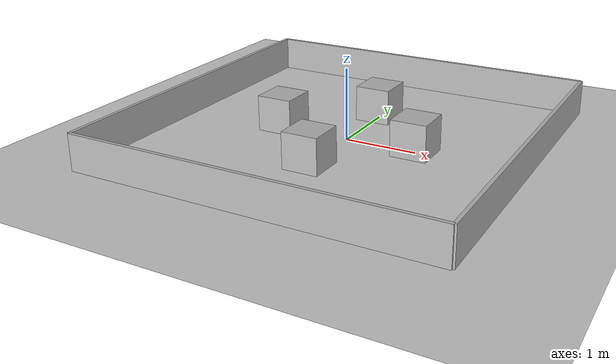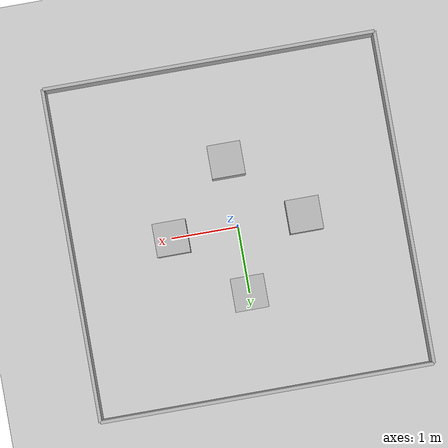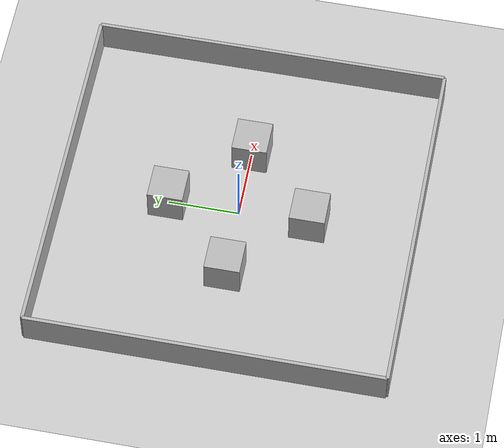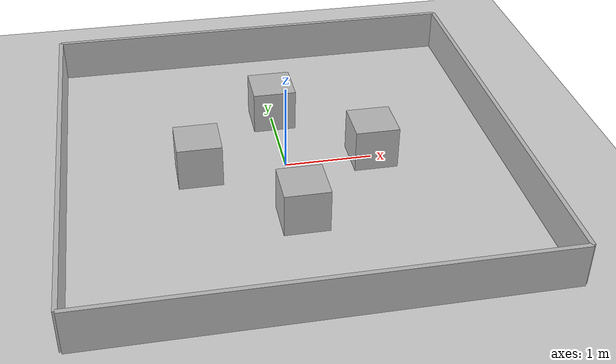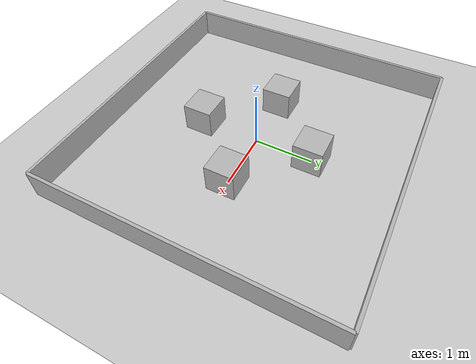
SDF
<?xml version="1.0" ?>
<sdf version="1.7">
  <world name="diff_drive_world">

    <!-- SCENE -->
    <scene>
      <grid>true</grid>
    </scene>

    <!-- PHYSICS (CORREGIDO) -->
    <physics name="1ms" type="ode">
      <max_step_size>0.001</max_step_size>
      <real_time_factor>1.0</real_time_factor>
    </physics>

    <!-- PLUGINS -->
    <plugin filename="gz-sim-physics-system" name="gz::sim::systems::Physics"/>
    <plugin filename="gz-sim-user-commands-system" name="gz::sim::systems::UserCommands"/>
    <plugin filename="gz-sim-scene-broadcaster-system" name="gz::sim::systems::SceneBroadcaster"/>
    <plugin filename="gz-sim-sensors-system" name="gz::sim::systems::Sensors">
      <render_engine>ogre2</render_engine>
    </plugin>
    <!-- LUZ -->
    <light type="directional" name="sun">
      <cast_shadows>true</cast_shadows>
      <pose>0 0 10 0 0 0</pose>
      <diffuse>0.8 0.8 0.8 1</diffuse>
      <specular>0.2 0.2 0.2 1</specular>
      <direction>-0.5 0.1 -0.9</direction>
    </light>

    <!-- SUELO -->
    <model name="ground_plane">
      <static>true</static>
      <link name="link">
        <collision name="collision">
          <geometry>
            <plane>
              <normal>0 0 1</normal>
            </plane>
          </geometry>
        </collision>
        <visual name="visual">
          <geometry>
            <plane>
              <normal>0 0 1</normal>
              <size>10 10</size>
            </plane>
          </geometry>
        </visual>
      </link>
    </model>

    <!-- PAREDES -->
    <model name="walls">
      <static>true</static>

      <link name="w1">
        <pose>0 2.5 0.25 0 0 0</pose>
        <collision name="c1">
          <geometry><box><size>5 0.05 0.5</size></box></geometry>
        </collision>
        <visual name="v1">
          <geometry><box><size>5 0.05 0.5</size></box></geometry>
        </visual>
      </link>

      <link name="w2">
        <pose>0 -2.5 0.25 0 0 0</pose>
        <collision name="c2">
          <geometry><box><size>5 0.05 0.5</size></box></geometry>
        </collision>
        <visual name="v2">
          <geometry><box><size>5 0.05 0.5</size></box></geometry>
        </visual>
      </link>

      <link name="w3">
        <pose>2.5 0 0.25 0 0 0</pose>
        <collision name="c3">
          <geometry><box><size>0.05 5 0.5</size></box></geometry>
        </collision>
        <visual name="v3">
          <geometry><box><size>0.05 5 0.5</size></box></geometry>
        </visual>
      </link>

      <link name="w4">
        <pose>-2.5 0 0.25 0 0 0</pose>
        <collision name="c4">
          <geometry><box><size>0.05 5 0.5</size></box></geometry>
        </collision>
        <visual name="v4">
          <geometry><box><size>0.05 5 0.5</size></box></geometry>
        </visual>
      </link>

    </model>

    <!-- OBSTÁCULOS -->
    <model name="box1">
      <pose>0 -1 0.25 0 0 0</pose>
      <link name="link">
        <collision name="collision">
          <geometry><box><size>0.5 0.5 0.5</size></box></geometry>
        </collision>
        <visual name="visual">
          <geometry><box><size>0.5 0.5 0.5</size></box></geometry>
        </visual>
      </link>
    </model>

    <model name="box2">
      <pose>0 1 0.25 0 0 0</pose>
      <link name="link">
        <collision name="collision">
          <geometry><box><size>0.5 0.5 0.5</size></box></geometry>
        </collision>
        <visual name="visual">
          <geometry><box><size>0.5 0.5 0.5</size></box></geometry>
        </visual>
      </link>
    </model>

    <model name="box3">
      <pose>-1 0 0.25 0 0 0</pose>
      <link name="link">
        <collision name="collision">
          <geometry><box><size>0.5 0.5 0.5</size></box></geometry>
        </collision>
        <visual name="visual">
          <geometry><box><size>0.5 0.5 0.5</size></box></geometry>
        </visual>
      </link>
    </model>

    <model name="box4">
      <pose>1 0 0.25 0 0 0</pose>
      <link name="link">
        <collision name="collision">
          <geometry><box><size>0.5 0.5 0.5</size></box></geometry>
        </collision>
        <visual name="visual">
          <geometry><box><size>0.5 0.5 0.5</size></box></geometry>
        </visual>
      </link>
    </model>

  </world>
</sdf>
